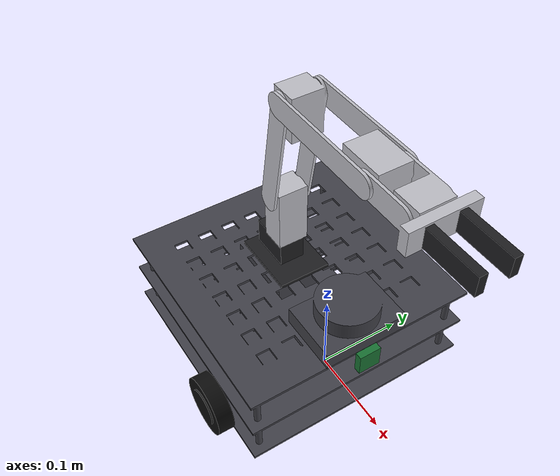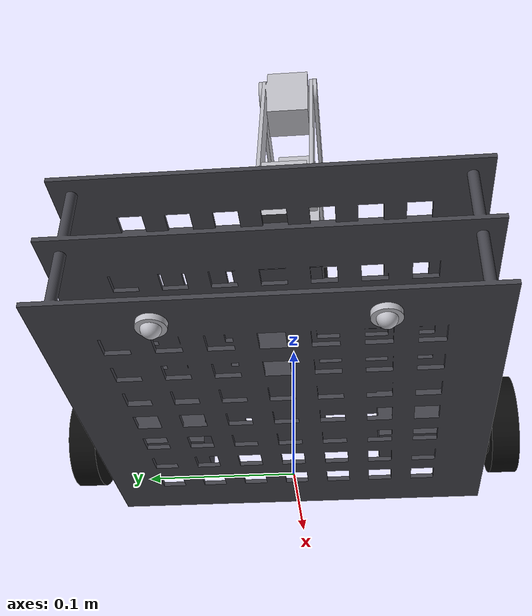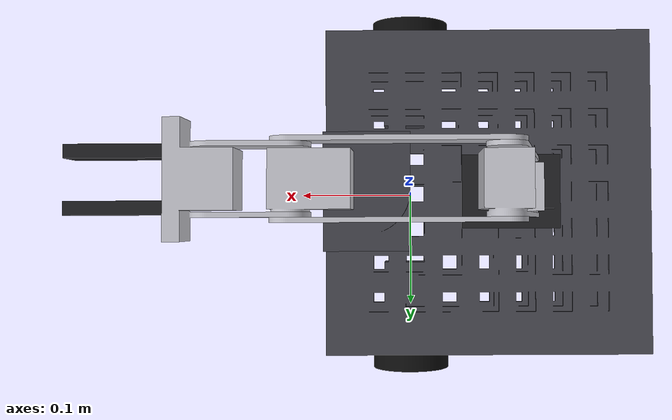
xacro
<?xml version="1.0" encoding="utf-8"?>
<!-- TurtleBot3 Waffle Pi + OpenMANIPULATOR-X mobile manipulator
     Generated by build_models.py (CAD -> URDF). Meshes in package://tb3_omx_description/meshes -->
<robot name="tb3_omx" xmlns:xacro="http://www.ros.org/wiki/xacro">
  <!-- path to config/ros2_controllers.yaml, passed in by launch/gazebo.launch.py -->
  <xacro:arg name="controllers_file" default=""/>

  <link name="base_footprint"/>
  <link name="base_link">
    <inertial>
      <origin xyz="-0.0540003 0 0.0415757" rpy="0 0 0"/>
      <mass value="1.3729"/>
      <inertia ixx="0.00876075" ixy="0" ixz="0.000415338" iyy="0.00777029" iyz="0" izz="0.0137839"/>
    </inertial>
    <visual>
      <origin xyz="0 0 0" rpy="0 0 0"/>
      <geometry>
        <mesh filename="package://tb3_omx_description/meshes/base_link.STL"/>
      </geometry>
      <material name="base_link_material">
        <color rgba="0.26 0.26 0.29 1"/>
      </material>
    </visual>
    <collision>
      <origin xyz="-0.064 0 0.047" rpy="0 0 0"/>
      <geometry>
        <box size="0.266 0.266 0.094"/>
      </geometry>
    </collision>
  </link>
  <link name="wheel_left_link">
    <inertial>
      <origin xyz="0 0 0" rpy="0 0 0"/>
      <mass value="0.0285"/>
      <inertia ixx="7.13935e-06" ixy="0" ixz="0" iyy="1.2573e-05" iyz="0" izz="7.13935e-06"/>
    </inertial>
    <visual>
      <origin xyz="0 0 0" rpy="0 0 0"/>
      <geometry>
        <mesh filename="package://tb3_omx_description/meshes/wheel_left_link.STL"/>
      </geometry>
      <material name="wheel_left_link_material">
        <color rgba="0.05 0.05 0.05 1"/>
      </material>
    </visual>
    <collision>
      <origin xyz="0 0 0" rpy="1.5708 0 0"/>
      <geometry>
        <cylinder radius="0.033" length="0.018"/>
      </geometry>
    </collision>
  </link>
  <link name="wheel_right_link">
    <inertial>
      <origin xyz="0 0 0" rpy="0 0 0"/>
      <mass value="0.0285"/>
      <inertia ixx="7.13935e-06" ixy="0" ixz="0" iyy="1.2573e-05" iyz="0" izz="7.13935e-06"/>
    </inertial>
    <visual>
      <origin xyz="0 0 0" rpy="0 0 0"/>
      <geometry>
        <mesh filename="package://tb3_omx_description/meshes/wheel_right_link.STL"/>
      </geometry>
      <material name="wheel_right_link_material">
        <color rgba="0.05 0.05 0.05 1"/>
      </material>
    </visual>
    <collision>
      <origin xyz="0 0 0" rpy="1.5708 0 0"/>
      <geometry>
        <cylinder radius="0.033" length="0.018"/>
      </geometry>
    </collision>
  </link>
  <link name="caster_back_left_link">
    <inertial>
      <origin xyz="0 0 0.00105882" rpy="0 0 0"/>
      <mass value="0.005"/>
      <inertia ixx="1e-07" ixy="0" ixz="0" iyy="1e-07" iyz="0" izz="1.41088e-07"/>
    </inertial>
    <visual>
      <origin xyz="0 0 0" rpy="0 0 0"/>
      <geometry>
        <mesh filename="package://tb3_omx_description/meshes/caster_back_left_link.STL"/>
      </geometry>
      <material name="caster_back_left_link_material">
        <color rgba="0.75 0.75 0.78 1"/>
      </material>
    </visual>
    <collision>
      <origin xyz="0 0 0" rpy="0 0 0"/>
      <geometry>
        <sphere radius="0.006"/>
      </geometry>
    </collision>
  </link>
  <link name="caster_back_right_link">
    <inertial>
      <origin xyz="0 0 0.00105882" rpy="0 0 0"/>
      <mass value="0.005"/>
      <inertia ixx="1e-07" ixy="0" ixz="0" iyy="1e-07" iyz="0" izz="1.41088e-07"/>
    </inertial>
    <visual>
      <origin xyz="0 0 0" rpy="0 0 0"/>
      <geometry>
        <mesh filename="package://tb3_omx_description/meshes/caster_back_right_link.STL"/>
      </geometry>
      <material name="caster_back_right_link_material">
        <color rgba="0.75 0.75 0.78 1"/>
      </material>
    </visual>
    <collision>
      <origin xyz="0 0 0" rpy="0 0 0"/>
      <geometry>
        <sphere radius="0.006"/>
      </geometry>
    </collision>
  </link>
  <link name="base_scan">
    <inertial>
      <origin xyz="0.000489081 0 -0.0111291" rpy="0 0 0"/>
      <mass value="0.114"/>
      <inertia ixx="8.17845e-05" ixy="0" ixz="3.83087e-07" iyy="5.52224e-05" iyz="0" izz="0.000109362"/>
    </inertial>
    <visual>
      <origin xyz="0 0 0" rpy="0 0 0"/>
      <geometry>
        <mesh filename="package://tb3_omx_description/meshes/base_scan.STL"/>
      </geometry>
      <material name="base_scan_material">
        <color rgba="0.25 0.25 0.28 1"/>
      </material>
    </visual>
    <collision>
      <origin xyz="0 0 0" rpy="0 0 0"/>
      <geometry>
        <mesh filename="package://tb3_omx_description/meshes/base_scan.STL"/>
      </geometry>
    </collision>
  </link>
  <link name="camera_link">
    <inertial>
      <origin xyz="0 0 0" rpy="0 0 0"/>
      <mass value="0.005"/>
      <inertia ixx="5.20833e-07" ixy="0" ixz="0" iyy="2.87083e-07" iyz="0" izz="2.87083e-07"/>
    </inertial>
    <visual>
      <origin xyz="0 0 0" rpy="0 0 0"/>
      <geometry>
        <mesh filename="package://tb3_omx_description/meshes/camera_link.STL"/>
      </geometry>
      <material name="camera_link_material">
        <color rgba="0.1 0.45 0.2 1"/>
      </material>
    </visual>
    <collision>
      <origin xyz="0 0 0" rpy="0 0 0"/>
      <geometry>
        <mesh filename="package://tb3_omx_description/meshes/camera_link.STL"/>
      </geometry>
    </collision>
  </link>
  <link name="link1">
    <inertial>
      <origin xyz="0.00314508 0 0.0129189" rpy="0 0 0"/>
      <mass value="0.079"/>
      <inertia ixx="2.03332e-05" ixy="0" ixz="2.15913e-06" iyy="3.36045e-05" iyz="0" izz="3.46388e-05"/>
    </inertial>
    <visual>
      <origin xyz="0 0 0" rpy="0 0 0"/>
      <geometry>
        <mesh filename="package://tb3_omx_description/meshes/link1.STL"/>
      </geometry>
      <material name="link1_material">
        <color rgba="0.12 0.12 0.13 1"/>
      </material>
    </visual>
    <collision>
      <origin xyz="0 0 0" rpy="0 0 0"/>
      <geometry>
        <mesh filename="package://tb3_omx_description/meshes/link1.STL"/>
      </geometry>
    </collision>
  </link>
  <link name="link2">
    <inertial>
      <origin xyz="0 0.000299939 0.0356827" rpy="0 0 0"/>
      <mass value="0.098"/>
      <inertia ixx="5.06793e-05" ixy="0" ixz="0" iyy="4.74134e-05" iyz="-7.00086e-07" izz="1.63817e-05"/>
    </inertial>
    <visual>
      <origin xyz="0 0 0" rpy="0 0 0"/>
      <geometry>
        <mesh filename="package://tb3_omx_description/meshes/link2.STL"/>
      </geometry>
      <material name="link2_material">
        <color rgba="0.75 0.75 0.78 1"/>
      </material>
    </visual>
    <collision>
      <origin xyz="0 0 0" rpy="0 0 0"/>
      <geometry>
        <mesh filename="package://tb3_omx_description/meshes/link2.STL"/>
      </geometry>
    </collision>
  </link>
  <link name="link3">
    <inertial>
      <origin xyz="0.0201929 0.000311785 0.099705" rpy="0 0 0"/>
      <mass value="0.138"/>
      <inertia ixx="0.000204587" ixy="-1.63804e-07" ixz="-3.31333e-05" iyy="0.00019273" iyz="-1.21743e-06" izz="4.25071e-05"/>
    </inertial>
    <visual>
      <origin xyz="0 0 0" rpy="0 0 0"/>
      <geometry>
        <mesh filename="package://tb3_omx_description/meshes/link3.STL"/>
      </geometry>
      <material name="link3_material">
        <color rgba="0.75 0.75 0.78 1"/>
      </material>
    </visual>
    <collision>
      <origin xyz="0 0 0" rpy="0 0 0"/>
      <geometry>
        <mesh filename="package://tb3_omx_description/meshes/link3.STL"/>
      </geometry>
    </collision>
  </link>
  <link name="link4">
    <inertial>
      <origin xyz="0.0968009 0.000315974 0" rpy="0 0 0"/>
      <mass value="0.133"/>
      <inertia ixx="3.91644e-05" ixy="-1.14303e-06" ixz="0" iyy="0.000166294" iyz="0" izz="0.000189366"/>
    </inertial>
    <visual>
      <origin xyz="0 0 0" rpy="0 0 0"/>
      <geometry>
        <mesh filename="package://tb3_omx_description/meshes/link4.STL"/>
      </geometry>
      <material name="link4_material">
        <color rgba="0.75 0.75 0.78 1"/>
      </material>
    </visual>
    <collision>
      <origin xyz="0 0 0" rpy="0 0 0"/>
      <geometry>
        <mesh filename="package://tb3_omx_description/meshes/link4.STL"/>
      </geometry>
    </collision>
  </link>
  <link name="link5">
    <inertial>
      <origin xyz="0.0473048 0 0" rpy="0 0 0"/>
      <mass value="0.143"/>
      <inertia ixx="4.30659e-05" ixy="0" ixz="0" iyy="5.0842e-05" iyz="0" izz="7.72551e-05"/>
    </inertial>
    <visual>
      <origin xyz="0 0 0" rpy="0 0 0"/>
      <geometry>
        <mesh filename="package://tb3_omx_description/meshes/link5.STL"/>
      </geometry>
      <material name="link5_material">
        <color rgba="0.75 0.75 0.78 1"/>
      </material>
    </visual>
    <collision>
      <origin xyz="0 0 0" rpy="0 0 0"/>
      <geometry>
        <mesh filename="package://tb3_omx_description/meshes/link5.STL"/>
      </geometry>
    </collision>
  </link>
  <link name="gripper_left_link">
    <inertial>
      <origin xyz="0.0163 -0.005 0" rpy="0 0 0"/>
      <mass value="0.01"/>
      <inertia ixx="3.86667e-07" ixy="0" ixz="0" iyy="2.94667e-06" iyz="0" izz="2.66667e-06"/>
    </inertial>
    <visual>
      <origin xyz="0 0 0" rpy="0 0 0"/>
      <geometry>
        <mesh filename="package://tb3_omx_description/meshes/gripper_left_link.STL"/>
      </geometry>
      <material name="gripper_left_link_material">
        <color rgba="0.12 0.12 0.13 1"/>
      </material>
    </visual>
    <collision>
      <origin xyz="0 0 0" rpy="0 0 0"/>
      <geometry>
        <mesh filename="package://tb3_omx_description/meshes/gripper_left_link.STL"/>
      </geometry>
    </collision>
  </link>
  <link name="gripper_right_link">
    <inertial>
      <origin xyz="0.0163 0.005 0" rpy="0 0 0"/>
      <mass value="0.01"/>
      <inertia ixx="3.86667e-07" ixy="0" ixz="0" iyy="2.94667e-06" iyz="0" izz="2.66667e-06"/>
    </inertial>
    <visual>
      <origin xyz="0 0 0" rpy="0 0 0"/>
      <geometry>
        <mesh filename="package://tb3_omx_description/meshes/gripper_right_link.STL"/>
      </geometry>
      <material name="gripper_right_link_material">
        <color rgba="0.12 0.12 0.13 1"/>
      </material>
    </visual>
    <collision>
      <origin xyz="0 0 0" rpy="0 0 0"/>
      <geometry>
        <mesh filename="package://tb3_omx_description/meshes/gripper_right_link.STL"/>
      </geometry>
    </collision>
  </link>
  <link name="end_effector_link"/>
  <joint name="base_joint" type="fixed">
    <origin xyz="0 0 0.01" rpy="0 0 0"/>
    <parent link="base_footprint"/>
    <child link="base_link"/>
  </joint>
  <joint name="wheel_left_joint" type="continuous">
    <origin xyz="0 0.144 0.023" rpy="0 0 0"/>
    <parent link="base_link"/>
    <child link="wheel_left_link"/>
    <axis xyz="0 1 0"/>
    <limit effort="10" velocity="10"/>
    <dynamics damping="0.1" friction="0.0"/>
  </joint>
  <joint name="wheel_right_joint" type="continuous">
    <origin xyz="0 -0.144 0.023" rpy="0 0 0"/>
    <parent link="base_link"/>
    <child link="wheel_right_link"/>
    <axis xyz="0 1 0"/>
    <limit effort="10" velocity="10"/>
    <dynamics damping="0.1" friction="0.0"/>
  </joint>
  <joint name="caster_back_left_joint" type="fixed">
    <origin xyz="-0.177 0.064 -0.004" rpy="0 0 0"/>
    <parent link="base_link"/>
    <child link="caster_back_left_link"/>
  </joint>
  <joint name="caster_back_right_joint" type="fixed">
    <origin xyz="-0.177 -0.064 -0.004" rpy="0 0 0"/>
    <parent link="base_link"/>
    <child link="caster_back_right_link"/>
  </joint>
  <joint name="scan_joint" type="fixed">
    <origin xyz="0.034 0 0.122" rpy="0 0 0"/>
    <parent link="base_link"/>
    <child link="base_scan"/>
  </joint>
  <joint name="camera_joint" type="fixed">
    <origin xyz="0.073 0 0.08" rpy="0 0 0"/>
    <parent link="base_link"/>
    <child link="camera_link"/>
  </joint>
  <joint name="omx_mount_joint" type="fixed">
    <origin xyz="-0.092 0 0.094" rpy="0 0 0"/>
    <parent link="base_link"/>
    <child link="link1"/>
  </joint>
  <joint name="joint1" type="revolute">
    <origin xyz="0.012 0 0.034" rpy="0 0 0"/>
    <parent link="link1"/>
    <child link="link2"/>
    <axis xyz="0 0 1"/>
    <limit lower="-2.83" upper="2.83" effort="1" velocity="4.8"/>
    <dynamics damping="0.1" friction="0.0"/>
  </joint>
  <joint name="joint2" type="revolute">
    <origin xyz="0 0 0.0595" rpy="0 0 0"/>
    <parent link="link2"/>
    <child link="link3"/>
    <axis xyz="0 1 0"/>
    <limit lower="-1.79" upper="1.57" effort="1" velocity="4.8"/>
    <dynamics damping="0.1" friction="0.0"/>
  </joint>
  <joint name="joint3" type="revolute">
    <origin xyz="0.024 0 0.128" rpy="0 0 0"/>
    <parent link="link3"/>
    <child link="link4"/>
    <axis xyz="0 1 0"/>
    <limit lower="-0.94" upper="1.38" effort="1" velocity="4.8"/>
    <dynamics damping="0.1" friction="0.0"/>
  </joint>
  <joint name="joint4" type="revolute">
    <origin xyz="0.124 0 0" rpy="0 0 0"/>
    <parent link="link4"/>
    <child link="link5"/>
    <axis xyz="0 1 0"/>
    <limit lower="-1.79" upper="2.04" effort="1" velocity="4.8"/>
    <dynamics damping="0.1" friction="0.0"/>
  </joint>
  <joint name="gripper_left_joint" type="prismatic">
    <origin xyz="0.0817 0.021 0" rpy="0 0 0"/>
    <parent link="link5"/>
    <child link="gripper_left_link"/>
    <axis xyz="0 1 0"/>
    <limit lower="-0.01" upper="0.019" effort="1" velocity="4.8"/>
    <dynamics damping="0.1" friction="0.0"/>
  </joint>
  <joint name="gripper_right_joint" type="prismatic">
    <origin xyz="0.0817 -0.021 0" rpy="0 0 0"/>
    <parent link="link5"/>
    <child link="gripper_right_link"/>
    <axis xyz="0 -1 0"/>
    <limit lower="-0.01" upper="0.019" effort="1" velocity="4.8"/>
    <dynamics damping="0.1" friction="0.0"/>
  </joint>
  <joint name="end_effector_joint" type="fixed">
    <origin xyz="0.126 0 0" rpy="0 0 0"/>
    <parent link="link5"/>
    <child link="end_effector_link"/>
  </joint>

  <!-- ros2_control: Gazebo (gz_ros2_control) hardware interface -->
  <ros2_control name="GazeboSimSystem" type="system">
    <hardware>
      <plugin>gz_ros2_control/GazeboSimSystem</plugin>
    </hardware>
    <joint name="wheel_left_joint">
      <command_interface name="velocity"/>
      <state_interface name="position">
        <param name="initial_value">0</param>
      </state_interface>
      <state_interface name="velocity"/>
    </joint>
    <joint name="wheel_right_joint">
      <command_interface name="velocity"/>
      <state_interface name="position">
        <param name="initial_value">0</param>
      </state_interface>
      <state_interface name="velocity"/>
    </joint>
    <joint name="joint1">
      <command_interface name="position"/>
      <state_interface name="position">
        <param name="initial_value">0</param>
      </state_interface>
      <state_interface name="velocity"/>
    </joint>
    <joint name="joint2">
      <command_interface name="position"/>
      <state_interface name="position">
        <param name="initial_value">-1</param>
      </state_interface>
      <state_interface name="velocity"/>
    </joint>
    <joint name="joint3">
      <command_interface name="position"/>
      <state_interface name="position">
        <param name="initial_value">0.3</param>
      </state_interface>
      <state_interface name="velocity"/>
    </joint>
    <joint name="joint4">
      <command_interface name="position"/>
      <state_interface name="position">
        <param name="initial_value">0.7</param>
      </state_interface>
      <state_interface name="velocity"/>
    </joint>
    <joint name="gripper_left_joint">
      <command_interface name="position"/>
      <state_interface name="position">
        <param name="initial_value">0.01</param>
      </state_interface>
      <state_interface name="velocity"/>
    </joint>
    <joint name="gripper_right_joint">
      <command_interface name="position"/>
      <state_interface name="position">
        <param name="initial_value">0.01</param>
      </state_interface>
      <state_interface name="velocity"/>
    </joint>
  </ros2_control>

  <gazebo>
    <plugin filename="gz_ros2_control-system" name="gz_ros2_control::GazeboSimROS2ControlPlugin">
      <parameters>$(arg controllers_file)</parameters>
    </plugin>
  </gazebo>

  <!-- wheel / caster friction -->
  <gazebo reference="wheel_left_link"><mu1>1.0</mu1><mu2>1.0</mu2><kp>500000.0</kp><kd>10.0</kd></gazebo>
  <gazebo reference="wheel_right_link"><mu1>1.0</mu1><mu2>1.0</mu2><kp>500000.0</kp><kd>10.0</kd></gazebo>
  <gazebo reference="caster_back_left_link"><mu1>0.0</mu1><mu2>0.0</mu2></gazebo>
  <gazebo reference="caster_back_right_link"><mu1>0.0</mu1><mu2>0.0</mu2></gazebo>

  <!-- LDS-01 360 deg lidar, published on /scan through ros_gz_bridge -->
  <gazebo reference="base_scan">
    <sensor name="lds01" type="gpu_lidar">
      <topic>scan</topic>
      <gz_frame_id>base_scan</gz_frame_id>
      <always_on>true</always_on>
      <visualize>true</visualize>
      <update_rate>5</update_rate>
      <lidar>
        <scan>
          <horizontal>
            <samples>360</samples>
            <resolution>1</resolution>
            <min_angle>0.0</min_angle>
            <max_angle>6.28319</max_angle>
          </horizontal>
        </scan>
        <range>
          <min>0.12</min>
          <max>3.5</max>
          <resolution>0.015</resolution>
        </range>
      </lidar>
    </sensor>
  </gazebo>
</robot>
